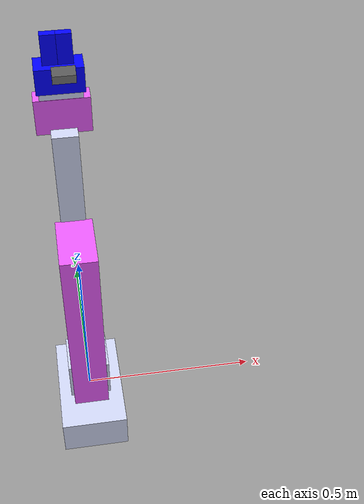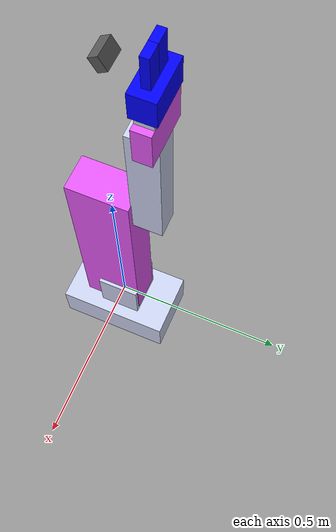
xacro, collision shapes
<?xml version="1.0" ?>
<robot name="six_dof_arm" xmlns:xacro="http://ros.org/wiki/xacro">

  <!-- Base link -->
  <link name="root_link">
    <visual>
      <geometry>
        <mesh filename="package://sirius_description/meshes/manipulators/6DOF/global_roll_assembly.STL" scale="0.001 0.001 0.001"/>
      </geometry>
      <origin xyz="0.0 0.0 0.0" rpy="0.0 0.0 ${pi/2}"/>
      <material name="gray">
        <color rgba=".796 .824 .937 1"/>
      </material>
    </visual>
    <collision>
      <geometry>
        <box size="0.192 0.327 0.112"/>
      </geometry>
      <origin xyz="0 0 -0.056" rpy="0 0 0"/>
    </collision>
    <inertial>
      <mass value="0.5"/>
      <inertia ixx="0.0042" ixy="0" ixz="0" iyy="0.0042" iyz="0" izz="0.0025"/>
    </inertial>
  </link>

  <!-- Joints and links -->

  <link name="link_1">
    <visual>
      <geometry>
        <mesh filename="package://sirius_description/meshes/manipulators/6DOF/base_assy.STL" scale="0.001 0.001 0.001"/>
      </geometry>
      <origin xyz="0.0 0.0 0.0" rpy="0.0 0.0 ${pi/2}"/>
      <material name="gray">
        <color rgba=".796 .824 .937 1"/>
      </material>
    </visual>
    <collision>
      <geometry>
        <box size="0.12 0.12 0.125"/>
      </geometry>
      <origin xyz="0 0.0125 0.0625" rpy="0 0 0"/>
    </collision>
    <inertial>
      <mass value="0.8"/>
      <inertia ixx="0.0034" ixy="0" ixz="0" iyy="0.0034" iyz="0" izz="0.0016"/>
    </inertial>
  </link>

  <joint name="joint_1" type="revolute">
    <parent link="root_link"/>
    <child link="link_1"/>
    <axis xyz="0 0 1"/>
    <limit lower="-3.14" upper="3.14" effort="1000.0" velocity="0.5"/>
    <origin xyz="0 0 0" rpy="0 0 0"/>
  </joint>

  <link name="link_2">
    <visual>
      <geometry>
        <mesh filename="package://sirius_description/meshes/manipulators/6DOF/GP1.STL" scale="0.001 0.001 0.001"/>
      </geometry>
      <origin xyz="0 0 0" rpy="0.0 0.0 0.0"/>
      <material name="pink">
        <color rgba="0.902 0.349 0.971 1.0"/>
      </material>
    </visual>
    <collision>
      <geometry>
        <box size="0.171 0.101 0.575"/>
      </geometry>
      <origin xyz="-0.0387 0.0005 0.2384" rpy="0 0 0"/>
    </collision>
    <inertial>
      <mass value="1.2"/>
      <inertia ixx="0.024" ixy="0" ixz="0" iyy="0.024" iyz="0" izz="0.0024"/>
    </inertial>
  </link>

  <joint name="joint_2" type="revolute">
    <parent link="link_1"/>
    <child link="link_2"/>
    <axis xyz="1 0 0"/>
    <limit lower="-1.58" upper="1.58" effort="1000.0" velocity="0.5"/>
    <origin xyz="0 0.02727 0.07" rpy="0 0 ${pi/2}"/>
  </joint>

  <link name="link_3">
    <visual>
      <geometry>
        <mesh filename="package://sirius_description/meshes/manipulators/6DOF/GP2.STL" scale="0.001 0.001 0.001"/>
      </geometry>
      <origin xyz="0 0 0" rpy="0.0 0.0 0.0"/>
      <material name="gray">
        <color rgba=".796 .824 .937 1"/>
      </material>
    </visual>
    <collision>
      <geometry>
        <box size="0.082 0.068 0.362"/>
      </geometry>
      <origin xyz="0.04 0.001 0.1213" rpy="0 0 0"/>
    </collision>
    <inertial>
      <mass value="0.8"/>
      <inertia ixx="0.012" ixy="0" ixz="0" iyy="0.012" iyz="0" izz="0.0016"/>
    </inertial>
  </link>

  <joint name="joint_3" type="revolute">
    <parent link="link_2"/>
    <child link="link_3"/>
    <axis xyz="1 0 0"/>
    <limit lower="-1.58" upper="1.58" effort="1000.0" velocity="0.5"/>
    <origin xyz="0.04573 0 0.495" rpy="0 0 0"/>
  </joint>

  <link name="link_4">
    <visual>
      <geometry>
        <mesh filename="package://sirius_description/meshes/manipulators/6DOF/wrist_diff_base.STL" scale="0.001 0.001 0.001"/>
      </geometry>
      <origin xyz="0.0 0.0 0.0" rpy="0.0 0.0 0.0"/>
      <material name="pink">
        <color rgba="0.902 0.349 0.971 1.0"/>
      </material>
    </visual>
    <collision>
      <geometry>
        <box size="0.046 0.142 0.098"/>
      </geometry>
      <origin xyz="0 -0.0005 0.0487" rpy="0 0 0"/>
    </collision>
    <inertial>
      <mass value="0.3"/>
      <inertia ixx="0.0005" ixy="0" ixz="0" iyy="0.0005" iyz="0" izz="0.0003"/>
    </inertial>
  </link>

  <joint name="joint_4" type="revolute">
    <parent link="link_3"/>
    <child link="link_4"/>
    <axis xyz="0 0 1"/>
    <limit lower="-3.14" upper="3.14" effort="1000.0" velocity="0.5"/>
    <origin xyz="0.06 0 0.29" rpy="0 0 0"/>
  </joint>

  <link name="link_5">
    <visual>
      <geometry>
        <mesh filename="package://sirius_description/meshes/manipulators/6DOF/wrist_diff_output.STL" scale="0.001 0.001 0.001"/>
      </geometry>
      <origin xyz="0.0 0.0 0.0" rpy="0.0 0.0 0.0"/>
      <material name="gray">
        <color rgba=".796 .824 .937 1"/>
      </material>
    </visual>
    <collision>
      <geometry>
        <box size="0.044 0.109 0.068"/>
      </geometry>
      <origin xyz="0 0 0.0196" rpy="0 0 0"/>
    </collision>
    <inertial>
      <mass value="0.2"/>
      <inertia ixx="0.0007" ixy="0" ixz="0" iyy="0.0001" iyz="0" izz="0.0007"/>
    </inertial>
  </link>

  <joint name="joint_5" type="revolute">
    <parent link="link_4"/>
    <child link="link_5"/>
    <axis xyz="0 1 0"/>
    <limit lower="-1.55" upper="1.55" effort="1000.0" velocity="0.5"/>
    <origin xyz="0 0 0.07825 " rpy="0.0 0 0"/>

  </joint>

  <link name="tcp_connector">
    <visual>
      <geometry>
        <mesh filename="package://sirius_description/meshes/manipulators/6DOF/gripper.stl" scale="0.001 0.001 0.001"/>
      </geometry>
      <origin xyz="0.0 -0.01 0.0" rpy="0.0 0.0 ${pi/2}"/>
      <material name="pink">
        <color rgba="0.0 0.0 1.0 1.0"/>
      </material>
    </visual>
    <collision>
      <geometry>
        <box size="0.062 0.121 0.068"/>
      </geometry>
      <origin xyz="0.0005 -0.0005 0.0337" rpy="0 0 0"/>
    </collision>
    <inertial>
      <mass value="0.3"/>
      <inertia ixx="0.0003" ixy="0" ixz="0" iyy="0.0003" iyz="0" izz="0.0002"/>
    </inertial>
  </link>

  <joint name="joint_6" type="revolute">
    <origin xyz="0 0.0 0.04" rpy="0 0 0"/>
    <parent link="link_5"/>
    <child link="tcp_connector"/>
    <axis xyz="0 0 1"/>
    <limit lower="-3.14" upper="3.14" effort="1000.0" velocity="0.5"/>
  </joint>

  <link name="gripper_left">
    <visual>
      <geometry>
        <mesh filename="package://sirius_description/meshes/manipulators/6DOF/gripper-claw.stl" scale="1 1 1"/>
      </geometry>
      <origin xyz="0.0 0.0 0" rpy="0.0 0.0 ${pi}"/>
      <material name="blue">
        <color rgba="0.0 0.0 1.0 1.0"/>
      </material>
    </visual>
    <collision>
      <geometry>
        <box size="0.02 0.038 0.083"/>
      </geometry>
      <origin xyz="0 -0.0016 0.0552" rpy="0 0 0"/>
    </collision>
    <inertial>
      <origin xyz="0 0 0.0552"/>
      <mass value="0.05"/>
      <inertia ixx="3.5e-5" ixy="0" ixz="0" iyy="3.0e-5" iyz="0" izz="7.7e-6"/>
    </inertial>
  </link>

  <joint name="joint_gripper_left" type="prismatic">
    <origin xyz="0 -0.0174 0.05" rpy="0 0 0"/>
    <parent link="tcp_connector"/>
    <child link="gripper_left"/>
    <axis xyz="0 -1 0"/>
    <limit lower="-0.002" upper="0.0346" effort="100.0" velocity="0.1"/>
  </joint>

  <link name="gripper_right">
    <visual>
      <geometry>
        <mesh filename="package://sirius_description/meshes/manipulators/6DOF/gripper-claw.stl" scale="1 1 1"/>
      </geometry>
      <origin xyz="0.0 0.0 0" rpy="0.0 0.0 0"/>
      <material name="blue">
        <color rgba="0.0 0.0 1.0 1.0"/>
      </material>
    </visual>
    <collision>
      <geometry>
        <box size="0.02 0.038 0.083"/>
      </geometry>
      <origin xyz="0 0.0016 0.0552" rpy="0 0 0"/>
    </collision>
    <inertial>
      <origin xyz="0 0 0.0552"/>
      <mass value="0.05"/>
      <inertia ixx="3.5e-5" ixy="0" ixz="0" iyy="3.0e-5" iyz="0" izz="7.7e-6"/>
    </inertial>
  </link>

  <joint name="joint_gripper_right" type="prismatic">
    <origin xyz="0 0.0174 0.05" rpy="0 0 0"/>
    <parent link="tcp_connector"/>
    <child link="gripper_right"/>
    <axis xyz="0 1 0"/>
    <limit lower="-0.002" upper="0.0346" effort="100.0" velocity="0.1"/>
  </joint>

  <link name="tool"/>

  <joint name="joint_tool" type="fixed">
    <origin xyz="0 0 0.147" rpy="0 0 0"/>
    <parent link="tcp_connector"/>
    <child link="tool"/>
  </joint>

  <xacro:include filename="$(find sirius_description)/urdf/oak-d-sr/oak_d_sr.urdf.xacro" />
  <xacro:oak-d-sr prefix="wrist" fps="10"/>

  <joint name="joint_wrist_camera" type="fixed">
    <origin xyz="-0.09 -0.01 0.09" rpy="0 -${pi/6} 0"/>
    <parent link="tcp_connector"/>
    <child link="wrist_camera"/>
  </joint>

  <gazebo>
    <plugin filename="gz-sim-detachable-joint-system" name="gz::sim::systems::DetachableJoint">
      <parent_link>tcp_connector</parent_link>
      <child_model>grasped_probe</child_model>
      <child_link>link</child_link>
      <attach_topic>/sirius/grasped_probe/attach</attach_topic>
      <detach_topic>/sirius/grasped_probe/detach</detach_topic>
      <output_topic>/sirius/grasped_probe/state</output_topic>
      <suppress_child_warning>true</suppress_child_warning>
    </plugin>
  </gazebo>

</robot>

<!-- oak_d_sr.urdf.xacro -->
<robot xmlns:xacro="http://ros.org/wiki/xacro">
<xacro:macro name="oak-d-sr" params="prefix:=oak-d-sr fps:=15">

  <xacro:property name="sr_width" value="1280"/>
  <xacro:property name="sr_height" value="800"/>
  <xacro:property name="sr_focal" value="904.936"/>

  <link name="${prefix}_camera">
    <visual>
      <material name="oak-d-w-material">
        <color rgba="0.35 0.35 0.35 1"/>
      </material>
      <geometry>
        <mesh filename="package://sirius_description/meshes/cameras/OAK-D-SR.stl"/>
      </geometry>
      <origin xyz="0 -0.022 -0.015" rpy="${pi/2} 0 ${pi/2}" />
    </visual>
    <collision>
      <geometry>
        <box size="0.0253 0.056 0.036"/>
      </geometry>
      <origin xyz="-0.0038 0.0005 0.0004" rpy="0 0 0" />
    </collision>
  </link>

  <link name="${prefix}_left_camera_optical"/>
  <link name="${prefix}_left_camera"/>
  <link name="${prefix}_right_camera_optical"/>
  <link name="${prefix}_right_camera"/>

  <joint name="${prefix}_left_camera_joint" type="fixed">
    <parent link="${prefix}_camera" />
    <child link="${prefix}_left_camera" />
    <origin xyz="0 0.01 0" rpy="0 0 0" />
  </joint>

  <joint name="${prefix}_left_camera_optical_joint" type="fixed">
    <parent link="${prefix}_left_camera" />
    <child link="${prefix}_left_camera_optical" />
    <origin xyz="0 0 0" rpy="-1.5707963267948966 0.0 -1.5707963267948966" />
  </joint>

  <joint name="${prefix}_right_camera_joint" type="fixed">
    <parent link="${prefix}_camera" />
    <child link="${prefix}_right_camera" />
    <origin xyz="0 -0.01 0" rpy="0 0 0" />
  </joint>

  <joint name="${prefix}_right_camera_optical_joint" type="fixed">
    <parent link="${prefix}_right_camera" />
    <child link="${prefix}_right_camera_optical" />
    <origin xyz="0 0 0" rpy="-1.5707963267948966 0.0 -1.5707963267948966" />
  </joint>

  <gazebo reference="${prefix}_left_camera">
    <sensor type="camera" name="${prefix}_left">
      <always_on>1</always_on>
      <update_rate>${fps}</update_rate>
      <topic>${prefix}/left/image_raw</topic>
      <gz_frame_id>${prefix}_left_camera_optical</gz_frame_id>
      <camera>
        <horizontal_fov>${2*atan2(sr_width/2, sr_focal)}</horizontal_fov>
        <image>
          <width>${sr_width}</width>
          <height>${sr_height}</height>
          <format>R8G8B8</format>
        </image>
        <clip>
          <near>0.02</near>
          <far>100</far>
        </clip>
        <noise>
          <type>gaussian</type>
          <mean>0.0</mean>
          <stddev>0.007</stddev>
        </noise>
      </camera>
    </sensor>
  </gazebo>

  <gazebo reference="${prefix}_right_camera">
    <sensor type="camera" name="${prefix}_right">
      <always_on>1</always_on>
      <update_rate>${fps}</update_rate>
      <topic>${prefix}/right/image_raw</topic>
      <gz_frame_id>${prefix}_right_camera_optical</gz_frame_id>
      <camera>
        <horizontal_fov>${2*atan2(sr_width/2, sr_focal)}</horizontal_fov>
        <image>
          <width>${sr_width}</width>
          <height>${sr_height}</height>
          <format>R8G8B8</format>
        </image>
        <clip>
          <near>0.02</near>
          <far>100</far>
        </clip>
        <noise>
          <type>gaussian</type>
          <mean>0.0</mean>
          <stddev>0.007</stddev>
        </noise>
      </camera>
    </sensor>
  </gazebo>

</xacro:macro>
</robot>
